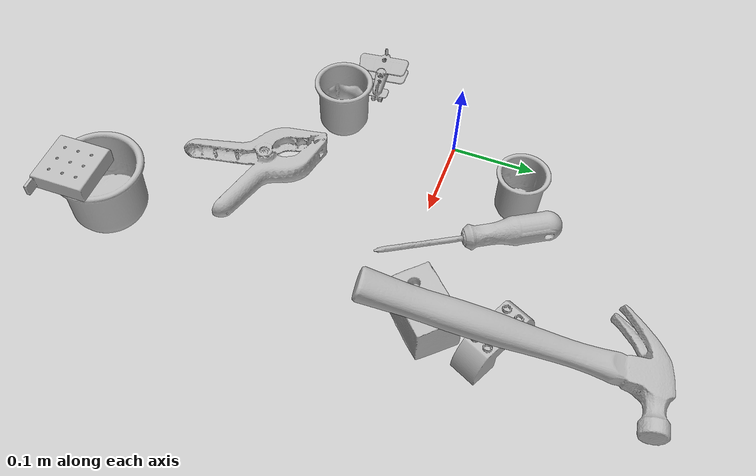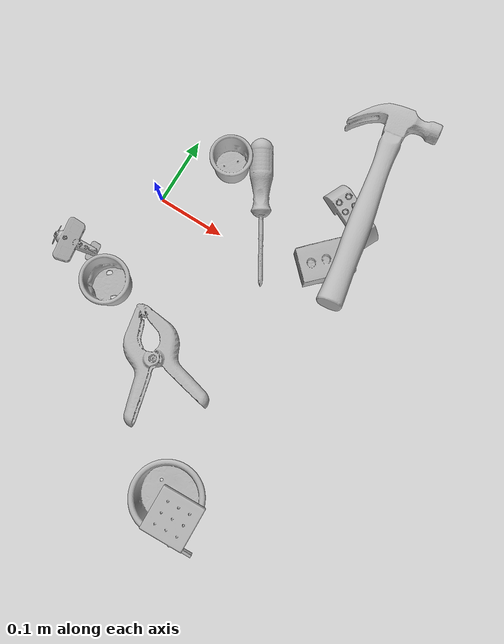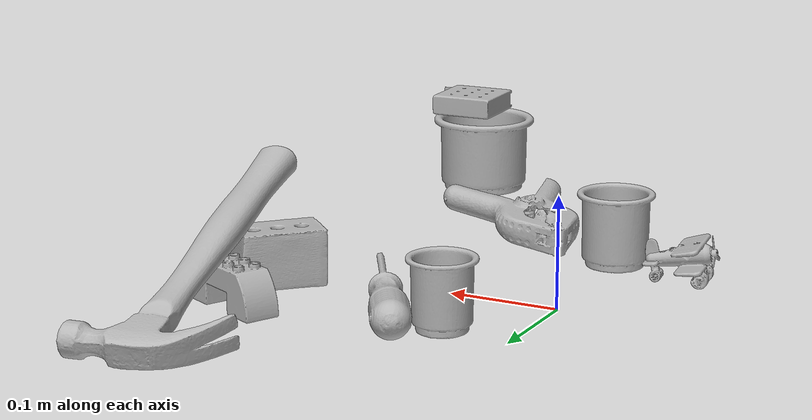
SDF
<sdf version="1.4">
  <world name="default">
    <light name="light1" type="point">
      <pose>0 0 1 0 0 0</pose>
      <diffuse>3 3 3 1</diffuse>
      <specular>3 3 3 1</specular>
    </light>
    <light name="light2" type="point">
      <pose>0 0.5 2 0 0 0</pose>
      <diffuse>1 1 1 1</diffuse>
      <specular>1 1 1 1</specular>
    </light>
    <light name="light3" type="point">
      <pose>0 0.5 2 0 0 0</pose>
      <diffuse>3 3 3 1</diffuse>
      <specular>3 3 3 1</specular>
    </light>
    <scene>
      <ambient>0.7 0.7 0.7</ambient>
    </scene>
    <model name="cup1">
      <link name="link_cup1">
        <collision name="default">
          <geometry>
            <mesh>
              <uri>model://j_cups/collision_meshes/collision.obj</uri>
              <scale>1.0 1.0 1.0</scale>
            </mesh>
          </geometry>
          <surface>
            <friction>
              <ode>
                <mu>0.5</mu>
                <mu2>0.5</mu2>
              </ode>
            </friction>
          <contact>
        <ode>
            <max_vel>0</max_vel>
            <min_depth>0.0001</min_depth>
            <kp>1e8</kp>
        </ode>
    </contact></surface>
        </collision>
        <visual name="default">
          <geometry>
            <mesh>
              <uri>model://j_cups/visual_meshes/visual.dae</uri>
              <scale>1.0 1.0 1.0</scale>
            </mesh>
          </geometry>
        </visual>
        <inertial>
          <mass>0.1112113818526268</mass>
          <pose>0.0006164852529764175 0.0005398975918069482 -0.0013479019980877638 0.030303955005909274 0.03757984422505388 0.4386955526072484</pose>
          <inertia>
            <ixx>0.00016329347</ixx>
            <iyy>0.00016499148</iyy>
            <izz>0.00018824349</izz>
            <ixy>0</ixy>
            <ixz>0</ixz>
            <iyz>0</iyz>
          </inertia>
        </inertial>
      </link>
      <pose>0.23371189832687378 -0.3482227623462677 0.037989549338817596 -1.5460925524715228e-05 3.365302713547705e-05 -0.6573258791468001</pose>
    </model>
    <model name="cup2">
      <link name="link_cup2">
        <collision name="default">
          <geometry>
            <mesh>
              <uri>model://b_cups/collision_meshes/collision.obj</uri>
              <scale>1.0 1.0 1.0</scale>
            </mesh>
          </geometry>
          <surface>
            <friction>
              <ode>
                <mu>0.5</mu>
                <mu2>0.5</mu2>
              </ode>
            </friction>
          <contact>
        <ode>
            <max_vel>0</max_vel>
            <min_depth>0.0001</min_depth>
            <kp>1e8</kp>
        </ode>
    </contact></surface>
        </collision>
        <visual name="default">
          <geometry>
            <mesh>
              <uri>model://b_cups/visual_meshes/visual.dae</uri>
              <scale>1.0 1.0 1.0</scale>
            </mesh>
          </geometry>
        </visual>
        <inertial>
          <mass>0.040588438510894775</mass>
          <pose>0.0005182006862014532 0.001805859268642962 -0.001338181202299893 0.11356319114734177 0.03872522211554688 -0.34569586720892936</pose>
          <inertia>
            <ixx>2.6567977e-05</ixx>
            <iyy>2.6063572e-05</iyy>
            <izz>2.235645e-05</izz>
            <ixy>0</ixy>
            <ixz>0</ixz>
            <iyz>0</iyz>
          </inertia>
        </inertial>
      </link>
      <pose>0.061384182423353195 0.09400511533021927 0.03199594095349312 -0.007585147523141713 -0.0038389272352151783 -1.4488235179961924</pose>
    </model>
    <model name="cup3">
      <link name="link_cup3">
        <collision name="default">
          <geometry>
            <mesh>
              <uri>model://d_cups/collision_meshes/collision.obj</uri>
              <scale>1.0 1.0 1.0</scale>
            </mesh>
          </geometry>
          <surface>
            <friction>
              <ode>
                <mu>0.5</mu>
                <mu2>0.5</mu2>
              </ode>
            </friction>
          <contact>
        <ode>
            <max_vel>0</max_vel>
            <min_depth>0.0001</min_depth>
            <kp>1e8</kp>
        </ode>
    </contact></surface>
        </collision>
        <visual name="default">
          <geometry>
            <mesh>
              <uri>model://d_cups/visual_meshes/visual.dae</uri>
              <scale>1.0 1.0 1.0</scale>
            </mesh>
          </geometry>
        </visual>
        <inertial>
          <mass>0.030152590945363045</mass>
          <pose>0.000806804746389389 0.0019117394695058465 -0.0022666517179459333 0.2401234305416289 -0.2470973002062907 0.5942515272324471</pose>
          <inertia>
            <ixx>2.5244808e-05</ixx>
            <iyy>2.517175e-05</iyy>
            <izz>2.2850849e-05</izz>
            <ixy>0</ixy>
            <ixz>0</ixz>
            <iyz>0</iyz>
          </inertia>
        </inertial>
      </link>
      <pose>0.005459040869027376 -0.14493729174137115 0.034659020602703094 -5.961112163657241e-07 -3.9196043734182154e-07 1.7269922923145538</pose>
    </model>
    <model name="toy1">
      <link name="link_toy1">
        <collision name="default">
          <geometry>
            <mesh>
              <uri>model://e_lego_duplo/collision_meshes/collision.obj</uri>
              <scale>1.0 1.0 1.0</scale>
            </mesh>
          </geometry>
          <surface>
            <friction>
              <ode>
                <mu>0.5</mu>
                <mu2>0.5</mu2>
              </ode>
            </friction>
          <contact>
        <ode>
            <max_vel>0</max_vel>
            <min_depth>0.0001</min_depth>
            <kp>1e8</kp>
        </ode>
    </contact></surface>
        </collision>
        <visual name="default">
          <geometry>
            <mesh>
              <uri>model://e_lego_duplo/visual_meshes/visual.dae</uri>
              <scale>1.0 1.0 1.0</scale>
            </mesh>
          </geometry>
        </visual>
        <inertial>
          <mass>0.09282131493091583</mass>
          <pose>0.0003256045747548342 0.00023485456767957658 0.0019521460635587573 -0.022567664257634346 -6.825452093688492e-05 -0.007625138047361518</pose>
          <inertia>
            <ixx>1.9356308e-05</ixx>
            <iyy>7.944328e-05</iyy>
            <izz>7.736177e-05</izz>
            <ixy>0</ixy>
            <ixz>0</ixz>
            <iyz>0</iyz>
          </inertia>
        </inertial>
      </link>
      <pose>0.24849168956279755 0.1190413311123848 0.02181096188724041 0.00024572252391988976 -3.900834254767351e-05 2.6993158279636797</pose>
    </model>
    <model name="toy2">
      <link name="link_toy2">
        <collision name="default">
          <geometry>
            <mesh>
              <uri>model://nine_hole_peg_test/collision_meshes/collision.obj</uri>
              <scale>0.5 0.5 0.5</scale>
            </mesh>
          </geometry>
          <surface>
            <friction>
              <ode>
                <mu>0.5</mu>
                <mu2>0.5</mu2>
              </ode>
            </friction>
          <contact>
        <ode>
            <max_vel>0</max_vel>
            <min_depth>0.0001</min_depth>
            <kp>1e8</kp>
        </ode>
    </contact></surface>
        </collision>
        <visual name="default">
          <geometry>
            <mesh>
              <uri>model://nine_hole_peg_test/visual_meshes/visual.dae</uri>
              <scale>0.5 0.5 0.5</scale>
            </mesh>
          </geometry>
        </visual>
        <inertial>
          <mass>0.0661587193608284</mass>
          <pose>-0.002308693015947938 -0.0048238071613013744 1.3230345757619943e-05 -0.0014666794270044752 0.0007194176174711586 -0.6342418340283942</pose>
          <inertia>
            <ixx>2.5862508e-05</ixx>
            <iyy>2.4147552e-05</iyy>
            <izz>4.531874e-05</izz>
            <ixy>0</ixy>
            <ixz>0</ixz>
            <iyz>0</iyz>
          </inertia>
        </inertial>
      </link>
      <pose>0.25965431332588196 -0.36566245555877686 0.08604542165994644 1.85297852723371e-05 -4.917164306031308e-05 -1.53982189442625</pose>
    </model>
    <model name="toy3">
      <link name="link_toy3">
        <collision name="default">
          <geometry>
            <mesh>
              <uri>model://foam_brick/collision_meshes/collision.obj</uri>
              <scale>1.0 1.0 1.0</scale>
            </mesh>
          </geometry>
          <surface>
            <friction>
              <ode>
                <mu>0.5</mu>
                <mu2>0.5</mu2>
              </ode>
            </friction>
          <contact>
        <ode>
            <max_vel>0</max_vel>
            <min_depth>0.0001</min_depth>
            <kp>1e8</kp>
        </ode>
    </contact></surface>
        </collision>
        <visual name="default">
          <geometry>
            <mesh>
              <uri>model://foam_brick/visual_meshes/visual.dae</uri>
              <scale>1.0 1.0 1.0</scale>
            </mesh>
          </geometry>
        </visual>
        <inertial>
          <mass>0.15239986777305603</mass>
          <pose>-0.00025224717683158815 0.0003458431747276336 -0.00025321010616607964 -0.29401565585717926 0.017274441097588973 -0.0007449887293440311</pose>
          <inertia>
            <ixx>6.6571105e-05</ixx>
            <iyy>0.00010628419</iyy>
            <izz>0.00010763494</izz>
            <ixy>0</ixy>
            <ixz>0</ixz>
            <iyz>0</iyz>
          </inertia>
        </inertial>
      </link>
      <pose>0.24973124265670776 0.04032362252473831 0.02592279389500618 0.013417102161999893 0.004152448280368487 0.7877067256717546</pose>
    </model>
    <model name="toy4">
      <link name="link_toy4">
        <collision name="default">
          <geometry>
            <mesh>
              <uri>model://a_toy_airplane/collision_meshes/collision.obj</uri>
              <scale>0.25 0.25 0.25</scale>
            </mesh>
          </geometry>
          <surface>
            <friction>
              <ode>
                <mu>0.5</mu>
                <mu2>0.5</mu2>
              </ode>
            </friction>
          <contact>
        <ode>
            <max_vel>0</max_vel>
            <min_depth>0.0001</min_depth>
            <kp>1e8</kp>
        </ode>
    </contact></surface>
        </collision>
        <visual name="default">
          <geometry>
            <mesh>
              <uri>model://a_toy_airplane/visual_meshes/visual.dae</uri>
              <scale>0.25 0.25 0.25</scale>
            </mesh>
          </geometry>
        </visual>
        <inertial>
          <mass>0.01630575954914093</mass>
          <pose>0.006291272584348917 -0.0009268299327231944 -0.0002990612993016839 -0.012016942866631759 -0.1466350865210375 0.004149072887705313</pose>
          <inertia>
            <ixx>3.7008767e-06</ixx>
            <iyy>5.392928e-06</iyy>
            <izz>6.314456e-06</izz>
            <ixy>0</ixy>
            <ixz>0</ixz>
            <iyz>0</iyz>
          </inertia>
        </inertial>
      </link>
      <pose>-0.06597443670034409 -0.12235991656780243 0.023090064525604248 1.975252734903385e-05 -3.0469441677090967e-05 -3.0138611979607806</pose>
    </model>
    <model name="hardware1">
      <link name="link_hardware1">
        <collision name="default">
          <geometry>
            <mesh>
              <uri>model://phillips_screwdriver/collision_meshes/collision.obj</uri>
              <scale>1.0 1.0 1.0</scale>
            </mesh>
          </geometry>
          <surface>
            <friction>
              <ode>
                <mu>0.5</mu>
                <mu2>0.5</mu2>
              </ode>
            </friction>
          <contact>
        <ode>
            <max_vel>0</max_vel>
            <min_depth>0.0001</min_depth>
            <kp>1e8</kp>
        </ode>
    </contact></surface>
        </collision>
        <visual name="default">
          <geometry>
            <mesh>
              <uri>model://phillips_screwdriver/visual_meshes/visual.dae</uri>
              <scale>1.0 1.0 1.0</scale>
            </mesh>
          </geometry>
        </visual>
        <inertial>
          <mass>0.05757145583629608</mass>
          <pose>-0.04777182266116142 0.001036230125464499 -0.000455554953077808 -0.1572215307256514 0.005850991069928943 -0.0021567397451199392</pose>
          <inertia>
            <ixx>6.764056e-06</ixx>
            <iyy>8.480946e-05</iyy>
            <izz>8.4881525e-05</izz>
            <ixy>0</ixy>
            <ixz>0</ixz>
            <iyz>0</iyz>
          </inertia>
        </inertial>
      </link>
      <pose>0.13180382549762726 0.058669403195381165 0.016774913296103477 -0.0006327784839544294 0.015087337196349984 -1.0314939952325546</pose>
    </model>
    <model name="hardware2">
      <link name="link_hardware2">
        <collision name="default">
          <geometry>
            <mesh>
              <uri>model://hammer/collision_meshes/collision.obj</uri>
              <scale>1.0 1.0 1.0</scale>
            </mesh>
          </geometry>
          <surface>
            <friction>
              <ode>
                <mu>0.5</mu>
                <mu2>0.5</mu2>
              </ode>
            </friction>
          <contact>
        <ode>
            <max_vel>0</max_vel>
            <min_depth>0.0001</min_depth>
            <kp>1e8</kp>
        </ode>
    </contact></surface>
        </collision>
        <visual name="default">
          <geometry>
            <mesh>
              <uri>model://hammer/visual_meshes/visual.dae</uri>
              <scale>1.0 1.0 1.0</scale>
            </mesh>
          </geometry>
        </visual>
        <inertial>
          <mass>0.19043192267417908</mass>
          <pose>0.00941577646881342 -0.011892358772456646 -0.0001235063245985657 0.023155672419862355 -0.004792164441448863 -0.012760315407460211</pose>
          <inertia>
            <ixx>8.15718e-05</ixx>
            <iyy>0.0022103586</iyy>
            <izz>0.002273686</izz>
            <ixy>0</ixy>
            <ixz>0</ixz>
            <iyz>0</iyz>
          </inertia>
        </inertial>
      </link>
      <pose>0.245549738407135 0.14747005701065063 0.05011758953332901 -0.03698108729134973 0.26405129074737255 1.7297495952062476</pose>
    </model>
    <model name="hardware3">
      <link name="link_hardware3">
        <collision name="default">
          <geometry>
            <mesh>
              <uri>model://large_clamp/collision_meshes/collision.obj</uri>
              <scale>1.0 1.0 1.0</scale>
            </mesh>
          </geometry>
          <surface>
            <friction>
              <ode>
                <mu>0.5</mu>
                <mu2>0.5</mu2>
              </ode>
            </friction>
          <contact>
        <ode>
            <max_vel>0</max_vel>
            <min_depth>0.0001</min_depth>
            <kp>1e8</kp>
        </ode>
    </contact></surface>
        </collision>
        <visual name="default">
          <geometry>
            <mesh>
              <uri>model://large_clamp/visual_meshes/visual.dae</uri>
              <scale>1.0 1.0 1.0</scale>
            </mesh>
          </geometry>
        </visual>
        <inertial>
          <mass>0.18636001646518707</mass>
          <pose>0.006369354669004679 0.0003585688828025013 -0.0001839799078879878 -0.0021330740505354343 0.009671591251539349 0.02663317297682702</pose>
          <inertia>
            <ixx>0.0001644205</ixx>
            <iyy>0.00031224336</iyy>
            <izz>0.00045169977</izz>
            <ixy>0</ixy>
            <ixz>0</ixz>
            <iyz>0</iyz>
          </inertia>
        </inertial>
      </link>
      <pose>0.1176760122179985 -0.20329882204532623 0.01850401610136032 -0.011605618737638294 0.0469270113681614 2.3471755620455133</pose>
    </model>
  <physics type="ode">
      <max_contacts>50</max_contacts>
      <ode>
        <solver>
          <type>quick</type>
          <iters>75</iters>
        </solver>
        <constraints>
          <contact_max_correcting_vel>0</contact_max_correcting_vel>
          <contact_surface_layer>0</contact_surface_layer>
        </constraints>
      </ode>
    </physics></world>
</sdf>
